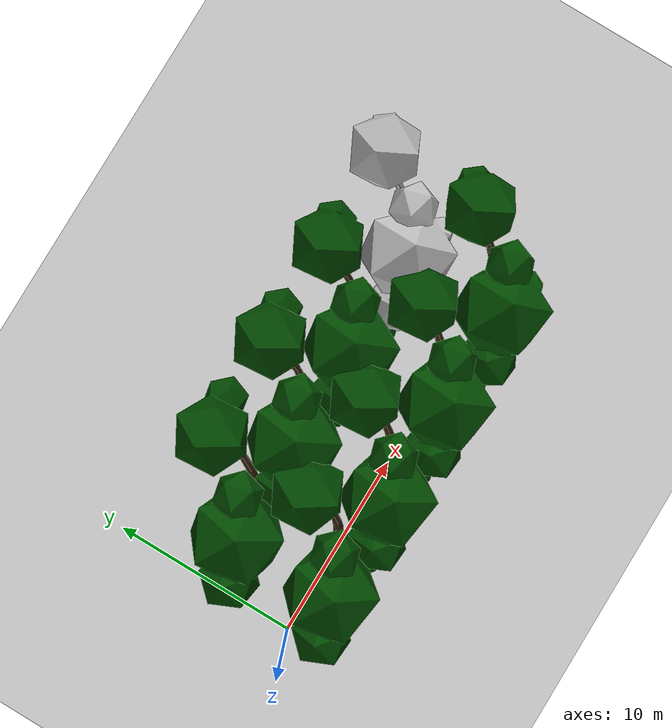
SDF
<?xml version="1.0"?>
<sdf version="1.4">
  <world name="default">
    <include>
      <uri>model://ground_plane</uri>
    </include>
    <include>
      <uri>model://sun</uri>
    </include>
    <model name="tree1">
      <pose>5 0 0  0 0 0</pose>
      <static>true</static>
      <link name="body">
        <visual name="visual">
          <geometry>
            <mesh><uri>file://greentree2.dae</uri></mesh>
          </geometry>
        </visual>
      </link>
    </model>

    <model name="tree2">
      <pose>10 0 0  0 0 0</pose>
      <static>true</static>
      <link name="body">
        <visual name="visual">
          <geometry>
            <mesh><uri>file://greentree2.dae</uri></mesh>
          </geometry>
        </visual>
      </link>
    </model>

    <model name="tree3">
      <pose>15 0 0  0 0 0</pose>
      <static>true</static>
      <link name="body">
        <visual name="visual">
          <geometry>
            <mesh><uri>file://greentree2.dae</uri></mesh>
          </geometry>
        </visual>
      </link>
    </model>

    <model name="tree4">
      <pose>20 0 0  0 0 0</pose>
      <static>true</static>
      <link name="body">
        <visual name="visual">
          <geometry>
            <mesh><uri>file://greentree2.dae</uri></mesh>
          </geometry>
        </visual>
      </link>
    </model>

    <model name="tree5">
      <pose>20 5 0  0 0 0</pose>
      <static>true</static>
      <link name="body">
        <visual name="visual">
          <geometry>
            <mesh><uri>file://redtree2.dae</uri></mesh>
          </geometry>
        </visual>
      </link>
    </model>

    <model name="tree6">
      <pose>15 5 0  0 0 0</pose>
      <static>true</static>
      <link name="body">
        <visual name="visual">
          <geometry>
            <mesh><uri>file://greentree2.dae</uri></mesh>
          </geometry>
        </visual>
      </link>
    </model>

    <model name="tree7">
      <pose>10 5 0  0 0 0</pose>
      <static>true</static>
      <link name="body">
        <visual name="visual">
          <geometry>
            <mesh><uri>file://greentree2.dae</uri></mesh>
          </geometry>
        </visual>
      </link>
    </model>

    <model name="tree8">
      <pose>5 5 0  0 0 0</pose>
      <static>true</static>
      <link name="body">
        <visual name="visual">
          <geometry>
            <mesh><uri>file://greentree2.dae</uri></mesh>
          </geometry>
        </visual>
      </link>
    </model>

  </world>
</sdf>
